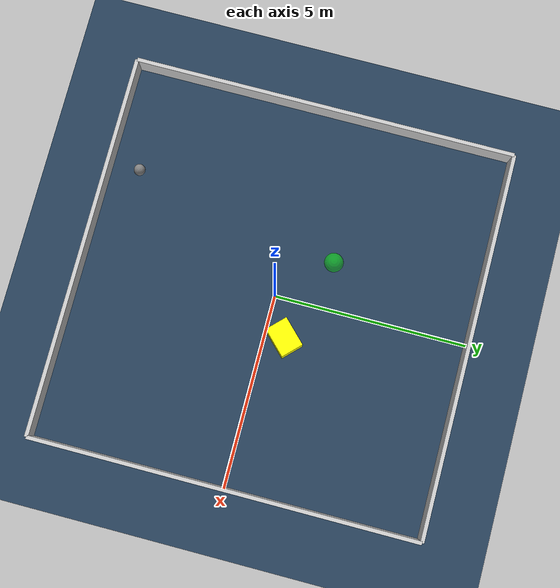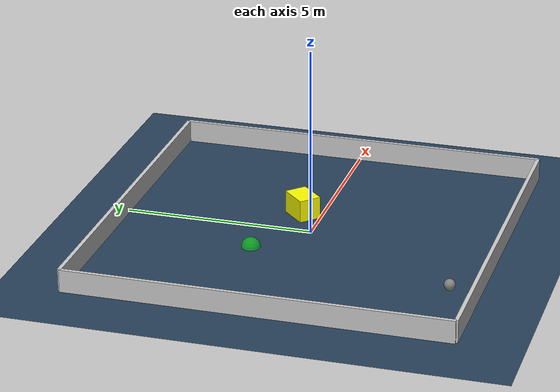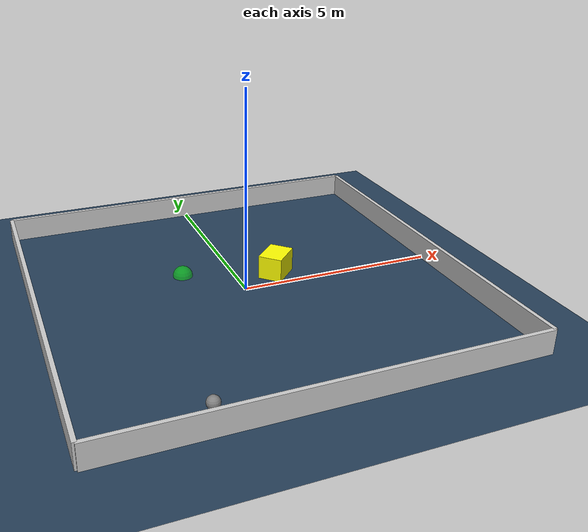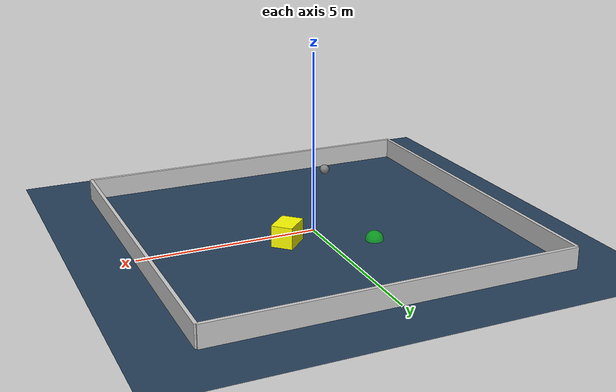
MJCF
<?xml version="1.0" ?>
<mujoco model="generated_environment">
  <option cone="elliptic" integrator="RK4" timestep="0.01"/>
  <default>
    <geom density="1"/>
  </default>
  <asset>
    <texture builtin="gradient" height="3072" rgb1="0.3 0.5 0.7" rgb2="0 0 0" type="skybox" width="512"/>
    <texture builtin="checker" height="300" mark="edge" markrgb="0.8 0.8 0.8" name="groundplane" rgb1="0.2 0.3 0.4" rgb2="0.1 0.2 0.3" type="2d" width="300"/>
    <material name="groundplane" reflectance="0.2" texrepeat="5 5" texture="groundplane" texuniform="true"/>
    <material name="robot" rgba="1.0 1.0 0.0 1.0"/>
  </asset>
  <worldbody>
    <light dir="0 0 -1" directional="true" pos="0 0 1.5"/>
    <geom condim="4" friction="0.5 0.005 0.001" material="groundplane" name="floor" size="0 0 0.05" type="plane"/>
    <body name="walls">
      <geom condim="4" name="wall_1" pos="-5.0 0.0 0.3" rgba="0.800000011920929 0.800000011920929 0.800000011920929 1.0" size="0.05 5.0 0.3" type="box"/>
      <geom condim="4" name="wall_2" pos="5.0 0.0 0.3" rgba="0.800000011920929 0.800000011920929 0.800000011920929 1.0" size="0.05 5.0 0.3" type="box"/>
      <geom condim="4" name="wall_3" pos="0.0 -5.0 0.3" rgba="0.800000011920929 0.800000011920929 0.800000011920929 1.0" size="5.0 0.05 0.3" type="box"/>
      <geom condim="4" name="wall_4" pos="0.0 5.0 0.3" rgba="0.800000011920929 0.800000011920929 0.800000011920929 1.0" size="5.0 0.05 0.3" type="box"/>
    </body>
    <body name="robot">
      <joint axis="1 0 0" name="joint_x" pos="0 0 0" type="slide"/>
      <joint axis="0 1 0" name="joint_y" pos="0 0 0" type="slide"/>
      <geom condim="4" friction="1.0 0.005 0.0001" mass="5.0" name="robot" pos="-2.2920343127876084 -4.228235364322694 0.15" size="0.15 0.15 0.15" type="sphere"/>
    </body>
    <body name="obstacle_1_movable">
      <geom condim="4" euler="0 0 45" friction="0.0 0.005 0.001" mass="0.1" name="obstacle_1_movable" pos="1.0 0.5 0.3" rgba="1 1 0 1" size="0.4 0.3 0.3" type="box"/>
      <joint type="free"/>
    </body>
    <site name="goal" pos="-1.240695909920285 1.2388021920559407 0.0" rgba="0 1 0 0.5" size="0.25 0.25 0.25" type="sphere"/>
  </worldbody>
  <actuator>
    <velocity kv="50" ctrlrange="-0.5 0.5" forcerange="-20 20" joint="joint_x" name="actuator_x"/>
    <velocity kv="50" ctrlrange="-0.5 0.5" forcerange="-20 20" joint="joint_y" name="actuator_y"/>
  </actuator>
</mujoco>
